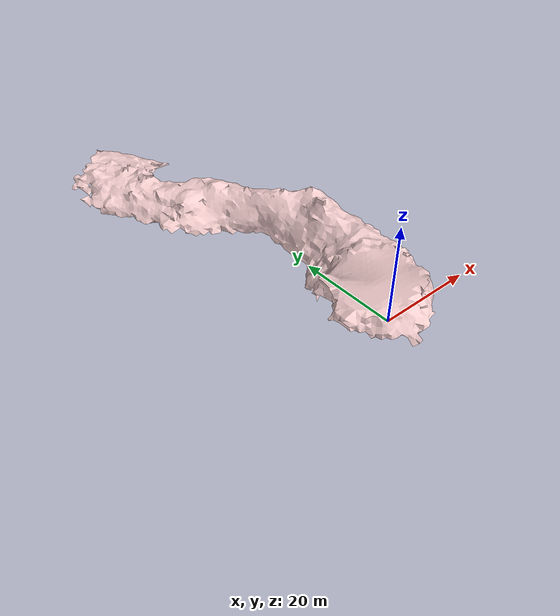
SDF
<?xml version="1.0" ?>
<sdf version="1.5">
  <world name="default">
    <include>
      <uri>model://indian_tunnel</uri>
    </include>

    <!-- Start: Gate -->
    <include>
      <name>gate_start</name>
      <uri>model://gate</uri>
      <pose>1 0 3.0 0 0 0</pose>
    </include>
    <!-- Start Area where an object enters to initiate the game. -->
    <model name="start_area">
      <static>true</static>
      <pose>1 0 0.5 0 0 0</pose>
      <link name="link">
        <collision name="collision">
          <geometry>
            <box>
              <size>0.2 5.0 2.0</size>
            </box>
          </geometry>
          <surface>
            <contact>
              <collide_without_contact>1</collide_without_contact>
            </contact>
          </surface>
        </collision>
        <sensor name="start_area_sensor" type="contact">
          <contact>
            <collision>collision</collision>
          </contact>
        </sensor>
      </link>
      <plugin name="touch_start_area" filename="libTouchPlugin.so">
        <sensor>start_area_sensor</sensor>
        <!-- empty target name lets the plugin detects everything -->
        <target></target>
        <time>0.001</time>
        <namespace>subt/start</namespace>
        <enabled>true</enabled>
      </plugin>
    </model>

    <!-- Add the artifacts to locate-->

    <!-- The SubT challenge logic plugin -->
    <plugin name="game_logic_plugin" filename="libGameLogicPlugin.so">
      <!-- Link the collection of objects to locate -->
    </plugin>

    <!-- The SubT comms broker plugin -->
    <plugin name="comms_broker_plugin" filename="libCommsBrokerPlugin.so">
    </plugin>

    <!-- rotors_gazebo support -->
    <plugin name="ros_interface_plugin" filename="librotors_gazebo_ros_interface_plugin.so"/>

  </world>
</sdf>

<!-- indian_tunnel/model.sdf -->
<sdf version="1.6">
  <model name="indian_tunnel">
    <static>true</static>
    <link name="indian_tunnel_link">
      <pose>0 0 0 0 0 0</pose>
      <collision name="indian_tunnel_collision">
        <geometry>
          <mesh>
            <uri>model://indian_tunnel/indian_tunnel.dae</uri>
          </mesh>
        </geometry>
      </collision>
      <visual name="indian_tunnel_visual">
        <geometry>
          <mesh>
            <uri>model://indian_tunnel/indian_tunnel.dae</uri>
          </mesh>
        </geometry>
        <material>
          <ambient>0 0 0 1</ambient>
          <diffuse>0.95 0.8 0.8 1</diffuse>
          <specular>0.1 0.95 0.95 1</specular>
          <emissive>0 0 0 1</emissive>
        </material>
        <cast_shadows>false</cast_shadows>
      </visual>
    </link>
  </model>
</sdf>

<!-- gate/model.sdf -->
<sdf version="1.4">
  <model name="gate">
    <static>true</static>
    <pose>0 0 0 0 0 0</pose>
    <link name="link">
      <collision name="right_collision">
        <pose>0 -2.5 -2.5 0 0 0</pose>
        <geometry>
          <box>
            <size>0.2 0.2 2.0</size>
          </box>
        </geometry>
      </collision>

      <collision name="left_collision">
        <pose>0 2.5 -2.5 0 0 0</pose>
        <geometry>
          <box>
            <size>0.2 0.2 2.0</size>
          </box>
        </geometry>
      </collision>

      <collision name="top_collision">
        <pose>0 0 -1.4 0 0 0</pose>
        <geometry>
          <box>
            <size>0.2 5.2 0.2</size>
          </box>
        </geometry>
      </collision>

      <visual name="visual">
        <pose>0 0 -3.5 0 0 0</pose>
        <geometry>
          <mesh>
            <uri>model://gate/meshes/gate.dae</uri>
            <scale>1 1 0.5</scale>
          </mesh>
        </geometry>
        <material>
          <script>
            <uri>model://gate/materials/scripts/gate.material</uri>
            <uri>model://gate/materials/textures</uri>
            <name>vrc/gate</name>
          </script>
        </material>
      </visual>

    </link>
  </model>
</sdf>
